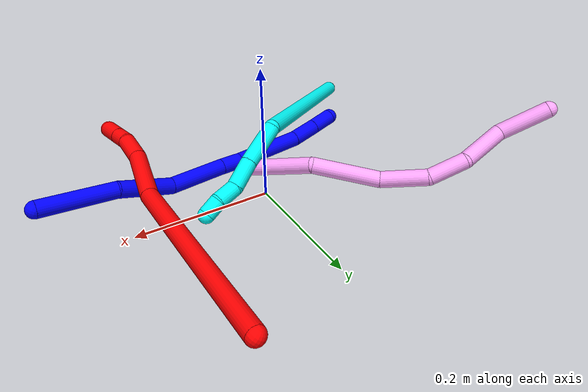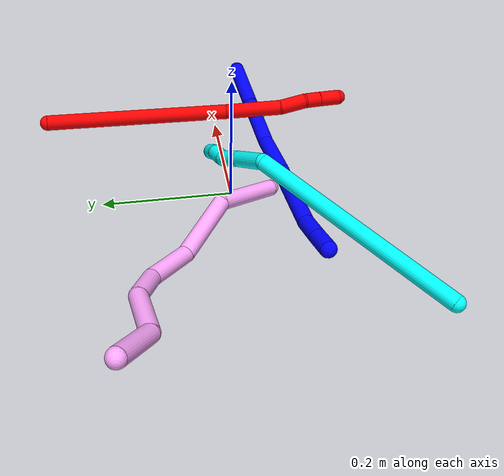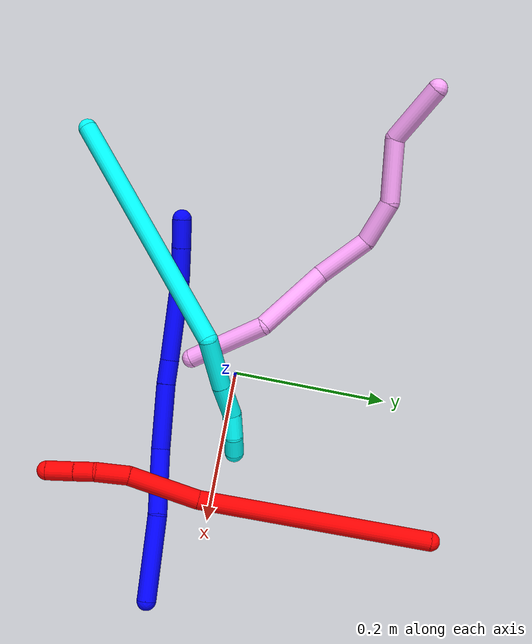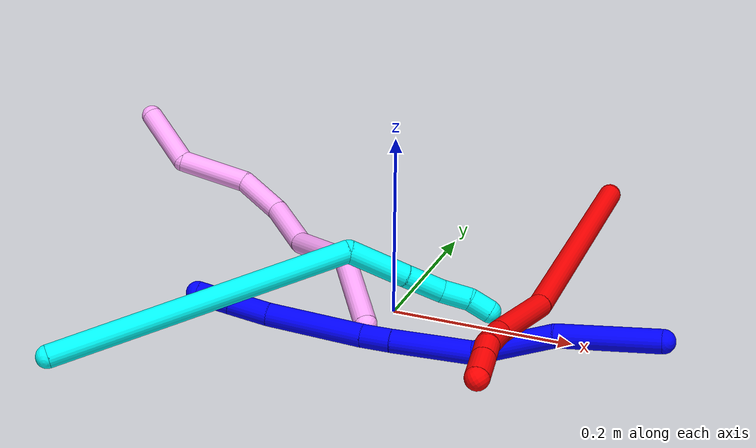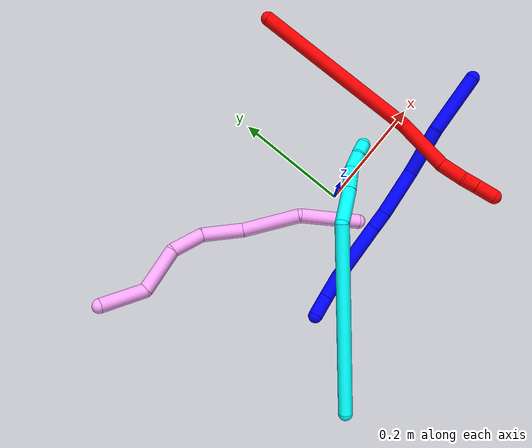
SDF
<sdf version="1.7">
 <world name="default">
  <plugin name="TubeGeneratorPlugin" filename="libtube_generator_plugin.so"/>
  <model name="photoneo_s_sensor">
   <static>1</static>
   <pose>0 0 2 1.57079 1.57079 3.14159</pose>
   <link name="link">
    <inertial><mass>0.1</mass></inertial>
    <sensor name="sensor" type="depth">
     <update_rate>30</update_rate>
     <camera>
      <horizontal_fov>1.22</horizontal_fov>
      <image><width>1920</width><height>1200</height><format>B8G8R8</format></image>
      <clip><near>0.1</near><far>4</far></clip>
      <depth_camera><output>points</output></depth_camera>
     </camera>
     <plugin name="camera_plugin" filename="libgazebo_ros_depth_camera.so">
      <baseline>0.2</baseline>
      <alwaysOn>1</alwaysOn>
      <updateRate>0.0</updateRate>
      <cameraName>camera_ir</cameraName>
      <imageTopicName>/camera/color/image_raw</imageTopicName>
      <cameraInfoTopicName>/camera/color/camera_info</cameraInfoTopicName>
      <depthImageTopicName>/camera/depth/image_raw</depthImageTopicName>
      <depthImageCameraInfoTopicName>/camera/depth/camera_info</depthImageCameraInfoTopicName>
      <pointCloudTopicName>/camera/depth/points</pointCloudTopicName>
      <frameName>fr_optical</frameName>
      <pointCloudCutoff>0.1</pointCloudCutoff>
      <pointCloudCutoffMax>2.0</pointCloudCutoffMax>
      <distortionK1>0</distortionK1>
      <distortionK2>0</distortionK2>
      <distortionK3>0</distortionK3>
      <distortionT1>0</distortionT1>
      <distortionT2>0</distortionT2>
      <CxPrime>0</CxPrime>
      <Cx>0</Cx>
      <Cy>0</Cy>
      <focalLength>0</focalLength>
      <hackBaseline>0</hackBaseline>
     </plugin>
    </sensor>
   </link>
  </model>
  <gravity>0 0 -9.8</gravity>
  <magnetic_field>6e-06 2.3e-05 -4.2e-05</magnetic_field>
  <atmosphere type="adiabatic"/>
  <physics name="default_physics" default="0" type="ode">
   <max_step_size>0.003</max_step_size>
   <real_time_factor>1</real_time_factor>
   <real_time_update_rate>1000</real_time_update_rate>
   <max_contacts>10000</max_contacts>
   <ode>
    <solver>
     <type>quick</type>
     <iters>100</iters>
     <sor>1.3</sor>
     <use_dynamic_moi_rescaling>0</use_dynamic_moi_rescaling>
    </solver>
    <constraints>
     <contact_max_correcting_vel>0</contact_max_correcting_vel>
     <contact_surface_layer>0.001</contact_surface_layer>
     <cfm>0</cfm>
     <erp>0.2</erp>
    </constraints>
   </ode>
  </physics>
  <scene><ambient>0.4 0.4 0.4 1</ambient><background>0.7 0.7 0.7 1</background><shadows>0</shadows></scene>
  <audio><device>default</device></audio>
  <spherical_coordinates>
   <surface_model>EARTH_WGS84</surface_model>
   <latitude_deg>0</latitude_deg>
   <longitude_deg>0</longitude_deg>
   <elevation>0</elevation>
   <heading_deg>0</heading_deg>
  </spherical_coordinates>
  <model name="bin">
   <static>1</static>
   <link name="bottom">
    <collision name="collision-bottom">
     <pose>0 0 -0.01 0 -0 0</pose>
     <geometry><box><size>0.8 0.6 0.02</size></box></geometry>
     <surface>
      <friction><ode><mu>100</mu><mu2>100</mu2></ode></friction>
      <contact><collide_bitmask>65535</collide_bitmask></contact>
     </surface>
    </collision>
   </link>
   <link name="west_wall">
    <collision name="collision-west_wall">
     <pose>-0.41 0 0.1 0 -0 0</pose>
     <geometry><box><size>0.02 0.6 0.2</size></box></geometry>
     <surface>
      <friction><ode><mu>100</mu><mu2>100</mu2></ode></friction>
      <contact><collide_bitmask>65535</collide_bitmask></contact>
     </surface>
    </collision>
   </link>
   <link name="east_wall">
    <collision name="collision-east_wall">
     <pose>0.41 0 0.1 0 -0 0</pose>
     <geometry><box><size>0.02 0.6 0.2</size></box></geometry>
     <surface>
      <friction><ode><mu>100</mu><mu2>100</mu2></ode></friction>
      <contact><collide_bitmask>65535</collide_bitmask></contact>
     </surface>
    </collision>
   </link>
   <link name="south_wall">
    <collision name="collision-south_wall">
     <pose>0 -0.31 0.1 0 -0 0</pose>
     <geometry><box><size>0.8 0.02 0.2</size></box></geometry>
     <surface>
      <friction><ode><mu>100</mu><mu2>100</mu2></ode></friction>
      <contact><collide_bitmask>65535</collide_bitmask></contact>
     </surface>
    </collision>
   </link>
   <link name="north_wall">
    <collision name="collision-north_wall">
     <pose>0 0.31 0.1 0 -0 0</pose>
     <geometry><box><size>0.8 0.02 0.2</size></box></geometry>
     <surface>
      <friction><ode><mu>100</mu><mu2>100</mu2></ode></friction>
      <contact><collide_bitmask>65535</collide_bitmask></contact>
     </surface>
    </collision>
   </link>
  </model>
  <model name="1">
   <static>0</static>
   <link name="1">
    <collision name="collision-cylinder-e_1_1_4">
     <pose>-0.033932 -0.015202 -0.03967 2.77563 -0.673962 -2.1697</pose>
     <geometry><cylinder><radius>0.0125</radius><length>0.108741</length></cylinder></geometry>
     <surface>
      <friction><ode><mu>1.16</mu><mu2>1.16</mu2><slip1>0</slip1><slip2>0</slip2></ode></friction>
      <contact><ode><kp>1e+06</kp><kd>1</kd><max_vel>0</max_vel><min_depth>0.001</min_depth></ode></contact>
     </surface>
    </collision>
    <visual name="visual-cylinder-e_1_1_4">
     <pose>-0.033932 -0.015202 -0.03967 2.77563 -0.673962 -2.1697</pose>
     <geometry><cylinder><radius>0.0125</radius><length>0.108741</length></cylinder></geometry>
     <material><ambient>0 0 1 1</ambient></material>
    </visual>
    <collision name="collision-cylinder-e_2_4_5">
     <pose>-0.088454 -0.051519 -0.111286 2.55757 -0.493344 -1.39455</pose>
     <geometry><cylinder><radius>0.0125</radius><length>0.086957</length></cylinder></geometry>
     <surface>
      <friction><ode><mu>1.16</mu><mu2>1.16</mu2><slip1>0</slip1><slip2>0</slip2></ode></friction>
      <contact><ode><kp>1e+06</kp><kd>1</kd><max_vel>0</max_vel><min_depth>0.001</min_depth></ode></contact>
     </surface>
    </collision>
    <visual name="visual-cylinder-e_2_4_5">
     <pose>-0.088454 -0.051519 -0.111286 2.55757 -0.493344 -1.39455</pose>
     <geometry><cylinder><radius>0.0125</radius><length>0.086957</length></cylinder></geometry>
     <material><ambient>0 0 1 1</ambient></material>
    </visual>
    <collision name="collision-cylinder-e_3_5_6">
     <pose>-0.1401 -0.082768 -0.171935 2.80219 -0.795416 -2.36703</pose>
     <geometry><cylinder><radius>0.0125</radius><length>0.08697</length></cylinder></geometry>
     <surface>
      <friction><ode><mu>1.16</mu><mu2>1.16</mu2><slip1>0</slip1><slip2>0</slip2></ode></friction>
      <contact><ode><kp>1e+06</kp><kd>1</kd><max_vel>0</max_vel><min_depth>0.001</min_depth></ode></contact>
     </surface>
    </collision>
    <visual name="visual-cylinder-e_3_5_6">
     <pose>-0.1401 -0.082768 -0.171935 2.80219 -0.795416 -2.36703</pose>
     <geometry><cylinder><radius>0.0125</radius><length>0.08697</length></cylinder></geometry>
     <material><ambient>0 0 1 1</ambient></material>
    </visual>
    <collision name="collision-cylinder-e_4_6_7">
     <pose>-0.182082 -0.095906 -0.211823 2.87922 -0.756311 -2.50028</pose>
     <geometry><cylinder><radius>0.0125</radius><length>0.031845</length></cylinder></geometry>
     <surface>
      <friction><ode><mu>1.16</mu><mu2>1.16</mu2><slip1>0</slip1><slip2>0</slip2></ode></friction>
      <contact><ode><kp>1e+06</kp><kd>1</kd><max_vel>0</max_vel><min_depth>0.001</min_depth></ode></contact>
     </surface>
    </collision>
    <visual name="visual-cylinder-e_4_6_7">
     <pose>-0.182082 -0.095906 -0.211823 2.87922 -0.756311 -2.50028</pose>
     <geometry><cylinder><radius>0.0125</radius><length>0.031845</length></cylinder></geometry>
     <material><ambient>0 0 1 1</ambient></material>
    </visual>
    <collision name="collision-cylinder-e_5_7_8">
     <pose>-0.231557 -0.107164 -0.258246 2.91148 -0.816923 -2.61973</pose>
     <geometry><cylinder><radius>0.0125</radius><length>0.105751</length></cylinder></geometry>
     <surface>
      <friction><ode><mu>1.16</mu><mu2>1.16</mu2><slip1>0</slip1><slip2>0</slip2></ode></friction>
      <contact><ode><kp>1e+06</kp><kd>1</kd><max_vel>0</max_vel><min_depth>0.001</min_depth></ode></contact>
     </surface>
    </collision>
    <visual name="visual-cylinder-e_5_7_8">
     <pose>-0.231557 -0.107164 -0.258246 2.91148 -0.816923 -2.61973</pose>
     <geometry><cylinder><radius>0.0125</radius><length>0.105751</length></cylinder></geometry>
     <material><ambient>0 0 1 1</ambient></material>
    </visual>
    <collision name="collision-cylinder-e_6_8_9">
     <pose>-0.287803 -0.118172 -0.305192 2.91065 -0.973863 -2.71027</pose>
     <geometry><cylinder><radius>0.0125</radius><length>0.042796</length></cylinder></geometry>
     <surface>
      <friction><ode><mu>1.16</mu><mu2>1.16</mu2><slip1>0</slip1><slip2>0</slip2></ode></friction>
      <contact><ode><kp>1e+06</kp><kd>1</kd><max_vel>0</max_vel><min_depth>0.001</min_depth></ode></contact>
     </surface>
    </collision>
    <visual name="visual-cylinder-e_6_8_9">
     <pose>-0.287803 -0.118172 -0.305192 2.91065 -0.973863 -2.71027</pose>
     <geometry><cylinder><radius>0.0125</radius><length>0.042796</length></cylinder></geometry>
     <material><ambient>0 0 1 1</ambient></material>
    </visual>
    <collision name="collision-cylinder-e_7_9_2">
     <pose>-0.320966 -0.123306 -0.326713 2.90355 -0.992412 -2.7068</pose>
     <geometry><cylinder><radius>0.0125</radius><length>0.03694</length></cylinder></geometry>
     <surface>
      <friction><ode><mu>1.16</mu><mu2>1.16</mu2><slip1>0</slip1><slip2>0</slip2></ode></friction>
      <contact><ode><kp>1e+06</kp><kd>1</kd><max_vel>0</max_vel><min_depth>0.001</min_depth></ode></contact>
     </surface>
    </collision>
    <visual name="visual-cylinder-e_7_9_2">
     <pose>-0.320966 -0.123306 -0.326713 2.90355 -0.992412 -2.7068</pose>
     <geometry><cylinder><radius>0.0125</radius><length>0.03694</length></cylinder></geometry>
     <material><ambient>0 0 1 1</ambient></material>
    </visual>
    <collision name="collision-sphere-2">
     <pose>-0.336431 -0.125687 -0.336525 0 -0 0</pose>
     <geometry><sphere><radius>0.0125</radius></sphere></geometry>
     <surface>
      <friction><ode><mu>1.16</mu><mu2>1.16</mu2><slip1>0</slip1><slip2>0</slip2></ode></friction>
      <contact><ode><kp>1e+06</kp><kd>1</kd><max_vel>0</max_vel><min_depth>0.001</min_depth></ode></contact>
     </surface>
    </collision>
    <visual name="visual-sphere-2">
     <pose>-0.336431 -0.125687 -0.336525 0 -0 0</pose>
     <geometry><sphere><radius>0.0125</radius></sphere></geometry>
     <material><ambient>0 0 1 1</ambient></material>
    </visual>
    <collision name="collision-sphere-9">
     <pose>-0.3055 -0.120925 -0.316901 0 -0 0</pose>
     <geometry><sphere><radius>0.0125</radius></sphere></geometry>
     <surface>
      <friction><ode><mu>1.16</mu><mu2>1.16</mu2><slip1>0</slip1><slip2>0</slip2></ode></friction>
      <contact><ode><kp>1e+06</kp><kd>1</kd><max_vel>0</max_vel><min_depth>0.001</min_depth></ode></contact>
     </surface>
    </collision>
    <visual name="visual-sphere-9">
     <pose>-0.3055 -0.120925 -0.316901 0 -0 0</pose>
     <geometry><sphere><radius>0.0125</radius></sphere></geometry>
     <material><ambient>0 0 1 1</ambient></material>
    </visual>
    <collision name="collision-sphere-4">
     <pose>-0.067864 -0.030405 -0.079339 0 -0 0</pose>
     <geometry><sphere><radius>0.0125</radius></sphere></geometry>
     <surface>
      <friction><ode><mu>1.16</mu><mu2>1.16</mu2><slip1>0</slip1><slip2>0</slip2></ode></friction>
      <contact><ode><kp>1e+06</kp><kd>1</kd><max_vel>0</max_vel><min_depth>0.001</min_depth></ode></contact>
     </surface>
    </collision>
    <visual name="visual-sphere-4">
     <pose>-0.067864 -0.030405 -0.079339 0 -0 0</pose>
     <geometry><sphere><radius>0.0125</radius></sphere></geometry>
     <material><ambient>0 0 1 1</ambient></material>
    </visual>
    <collision name="collision-sphere-1">
     <geometry><sphere><radius>0.0125</radius></sphere></geometry>
     <surface>
      <friction><ode><mu>1.16</mu><mu2>1.16</mu2><slip1>0</slip1><slip2>0</slip2></ode></friction>
      <contact><ode><kp>1e+06</kp><kd>1</kd><max_vel>0</max_vel><min_depth>0.001</min_depth></ode></contact>
     </surface>
    </collision>
    <visual name="visual-sphere-1">
     <geometry><sphere><radius>0.0125</radius></sphere></geometry>
     <material><ambient>0 0 1 1</ambient></material>
    </visual>
    <collision name="collision-sphere-8">
     <pose>-0.270105 -0.115419 -0.293484 0 -0 0</pose>
     <geometry><sphere><radius>0.0125</radius></sphere></geometry>
     <surface>
      <friction><ode><mu>1.16</mu><mu2>1.16</mu2><slip1>0</slip1><slip2>0</slip2></ode></friction>
      <contact><ode><kp>1e+06</kp><kd>1</kd><max_vel>0</max_vel><min_depth>0.001</min_depth></ode></contact>
     </surface>
    </collision>
    <visual name="visual-sphere-8">
     <pose>-0.270105 -0.115419 -0.293484 0 -0 0</pose>
     <geometry><sphere><radius>0.0125</radius></sphere></geometry>
     <material><ambient>0 0 1 1</ambient></material>
    </visual>
    <collision name="collision-sphere-5">
     <pose>-0.109045 -0.072634 -0.143232 0 -0 0</pose>
     <geometry><sphere><radius>0.0125</radius></sphere></geometry>
     <surface>
      <friction><ode><mu>1.16</mu><mu2>1.16</mu2><slip1>0</slip1><slip2>0</slip2></ode></friction>
      <contact><ode><kp>1e+06</kp><kd>1</kd><max_vel>0</max_vel><min_depth>0.001</min_depth></ode></contact>
     </surface>
    </collision>
    <visual name="visual-sphere-5">
     <pose>-0.109045 -0.072634 -0.143232 0 -0 0</pose>
     <geometry><sphere><radius>0.0125</radius></sphere></geometry>
     <material><ambient>0 0 1 1</ambient></material>
    </visual>
    <collision name="collision-sphere-6">
     <pose>-0.171155 -0.092902 -0.200638 0 -0 0</pose>
     <geometry><sphere><radius>0.0125</radius></sphere></geometry>
     <surface>
      <friction><ode><mu>1.16</mu><mu2>1.16</mu2><slip1>0</slip1><slip2>0</slip2></ode></friction>
      <contact><ode><kp>1e+06</kp><kd>1</kd><max_vel>0</max_vel><min_depth>0.001</min_depth></ode></contact>
     </surface>
    </collision>
    <visual name="visual-sphere-6">
     <pose>-0.171155 -0.092902 -0.200638 0 -0 0</pose>
     <geometry><sphere><radius>0.0125</radius></sphere></geometry>
     <material><ambient>0 0 1 1</ambient></material>
    </visual>
    <collision name="collision-sphere-7">
     <pose>-0.193008 -0.09891 -0.223008 0 -0 0</pose>
     <geometry><sphere><radius>0.0125</radius></sphere></geometry>
     <surface>
      <friction><ode><mu>1.16</mu><mu2>1.16</mu2><slip1>0</slip1><slip2>0</slip2></ode></friction>
      <contact><ode><kp>1e+06</kp><kd>1</kd><max_vel>0</max_vel><min_depth>0.001</min_depth></ode></contact>
     </surface>
    </collision>
    <visual name="visual-sphere-7">
     <pose>-0.193008 -0.09891 -0.223008 0 -0 0</pose>
     <geometry><sphere><radius>0.0125</radius></sphere></geometry>
     <material><ambient>0 0 1 1</ambient></material>
    </visual>
    <inertial>
     <pose>-0.15605 -0.074661 -0.176258 0 -0 0</pose>
     <mass>0.5</mass>
     <inertia>
      <ixx>-0.000357</ixx>
      <ixy>0</ixy>
      <ixz>0</ixz>
      <iyy>4.6e-05</iyy>
      <iyz>0</iyz>
      <izz>0.000293</izz>
     </inertia>
    </inertial>
   </link>
   <pose>0.306185 -0.056448 0.052177 0.989793 0.674718 0.546523</pose>
  </model>
  <model name="2">
   <static>0</static>
   <link name="2">
    <collision name="collision-cylinder-e_1_1_4">
     <pose>-0.029601 -0.145402 -0.024557 1.73811 -0.198105 -0.234064</pose>
     <geometry><cylinder><radius>0.0125</radius><length>0.300805</length></cylinder></geometry>
     <surface>
      <friction><ode><mu>1.16</mu><mu2>1.16</mu2><slip1>0</slip1><slip2>0</slip2></ode></friction>
      <contact><ode><kp>1e+06</kp><kd>1</kd><max_vel>0</max_vel><min_depth>0.001</min_depth></ode></contact>
     </surface>
    </collision>
    <visual name="visual-cylinder-e_1_1_4">
     <pose>-0.029601 -0.145402 -0.024557 1.73811 -0.198105 -0.234064</pose>
     <geometry><cylinder><radius>0.0125</radius><length>0.300805</length></cylinder></geometry>
     <material><ambient>1 0 0 1</ambient></material>
    </visual>
    <collision name="collision-cylinder-e_2_4_5">
     <pose>-0.071248 -0.33629 -0.04697 1.5237 -0.258612 -0.246834</pose>
     <geometry><cylinder><radius>0.0125</radius><length>0.094206</length></cylinder></geometry>
     <surface>
      <friction><ode><mu>1.16</mu><mu2>1.16</mu2><slip1>0</slip1><slip2>0</slip2></ode></friction>
      <contact><ode><kp>1e+06</kp><kd>1</kd><max_vel>0</max_vel><min_depth>0.001</min_depth></ode></contact>
     </surface>
    </collision>
    <visual name="visual-cylinder-e_2_4_5">
     <pose>-0.071248 -0.33629 -0.04697 1.5237 -0.258612 -0.246834</pose>
     <geometry><cylinder><radius>0.0125</radius><length>0.094206</length></cylinder></geometry>
     <material><ambient>1 0 0 1</ambient></material>
    </visual>
    <collision name="collision-cylinder-e_3_5_6">
     <pose>-0.084225 -0.403378 -0.045354 1.59523 -0.043035 -0.044099</pose>
     <geometry><cylinder><radius>0.0125</radius><length>0.043258</length></cylinder></geometry>
     <surface>
      <friction><ode><mu>1.16</mu><mu2>1.16</mu2><slip1>0</slip1><slip2>0</slip2></ode></friction>
      <contact><ode><kp>1e+06</kp><kd>1</kd><max_vel>0</max_vel><min_depth>0.001</min_depth></ode></contact>
     </surface>
    </collision>
    <visual name="visual-cylinder-e_3_5_6">
     <pose>-0.084225 -0.403378 -0.045354 1.59523 -0.043035 -0.044099</pose>
     <geometry><cylinder><radius>0.0125</radius><length>0.043258</length></cylinder></geometry>
     <material><ambient>1 0 0 1</ambient></material>
    </visual>
    <collision name="collision-cylinder-e_4_6_7">
     <pose>-0.086323 -0.437322 -0.049507 1.85644 -0.090561 -0.120916</pose>
     <geometry><cylinder><radius>0.0125</radius><length>0.025831</length></cylinder></geometry>
     <surface>
      <friction><ode><mu>1.16</mu><mu2>1.16</mu2><slip1>0</slip1><slip2>0</slip2></ode></friction>
      <contact><ode><kp>1e+06</kp><kd>1</kd><max_vel>0</max_vel><min_depth>0.001</min_depth></ode></contact>
     </surface>
    </collision>
    <visual name="visual-cylinder-e_4_6_7">
     <pose>-0.086323 -0.437322 -0.049507 1.85644 -0.090561 -0.120916</pose>
     <geometry><cylinder><radius>0.0125</radius><length>0.025831</length></cylinder></geometry>
     <material><ambient>1 0 0 1</ambient></material>
    </visual>
    <collision name="collision-cylinder-e_5_7_2">
     <pose>-0.089386 -0.466785 -0.05818 1.85756 -0.105729 -0.141306</pose>
     <geometry><cylinder><radius>0.0125</radius><length>0.035899</length></cylinder></geometry>
     <surface>
      <friction><ode><mu>1.16</mu><mu2>1.16</mu2><slip1>0</slip1><slip2>0</slip2></ode></friction>
      <contact><ode><kp>1e+06</kp><kd>1</kd><max_vel>0</max_vel><min_depth>0.001</min_depth></ode></contact>
     </surface>
    </collision>
    <visual name="visual-cylinder-e_5_7_2">
     <pose>-0.089386 -0.466785 -0.05818 1.85756 -0.105729 -0.141306</pose>
     <geometry><cylinder><radius>0.0125</radius><length>0.035899</length></cylinder></geometry>
     <material><ambient>1 0 0 1</ambient></material>
    </visual>
    <collision name="collision-sphere-2">
     <pose>-0.09128 -0.483905 -0.063229 0 -0 0</pose>
     <geometry><sphere><radius>0.0125</radius></sphere></geometry>
     <surface>
      <friction><ode><mu>1.16</mu><mu2>1.16</mu2><slip1>0</slip1><slip2>0</slip2></ode></friction>
      <contact><ode><kp>1e+06</kp><kd>1</kd><max_vel>0</max_vel><min_depth>0.001</min_depth></ode></contact>
     </surface>
    </collision>
    <visual name="visual-sphere-2">
     <pose>-0.09128 -0.483905 -0.063229 0 -0 0</pose>
     <geometry><sphere><radius>0.0125</radius></sphere></geometry>
     <material><ambient>1 0 0 1</ambient></material>
    </visual>
    <collision name="collision-sphere-7">
     <pose>-0.087491 -0.449664 -0.053131 0 -0 0</pose>
     <geometry><sphere><radius>0.0125</radius></sphere></geometry>
     <surface>
      <friction><ode><mu>1.16</mu><mu2>1.16</mu2><slip1>0</slip1><slip2>0</slip2></ode></friction>
      <contact><ode><kp>1e+06</kp><kd>1</kd><max_vel>0</max_vel><min_depth>0.001</min_depth></ode></contact>
     </surface>
    </collision>
    <visual name="visual-sphere-7">
     <pose>-0.087491 -0.449664 -0.053131 0 -0 0</pose>
     <geometry><sphere><radius>0.0125</radius></sphere></geometry>
     <material><ambient>1 0 0 1</ambient></material>
    </visual>
    <collision name="collision-sphere-6">
     <pose>-0.085155 -0.424981 -0.045882 0 -0 0</pose>
     <geometry><sphere><radius>0.0125</radius></sphere></geometry>
     <surface>
      <friction><ode><mu>1.16</mu><mu2>1.16</mu2><slip1>0</slip1><slip2>0</slip2></ode></friction>
      <contact><ode><kp>1e+06</kp><kd>1</kd><max_vel>0</max_vel><min_depth>0.001</min_depth></ode></contact>
     </surface>
    </collision>
    <visual name="visual-sphere-6">
     <pose>-0.085155 -0.424981 -0.045882 0 -0 0</pose>
     <geometry><sphere><radius>0.0125</radius></sphere></geometry>
     <material><ambient>1 0 0 1</ambient></material>
    </visual>
    <collision name="collision-sphere-5">
     <pose>-0.083294 -0.381776 -0.044826 0 -0 0</pose>
     <geometry><sphere><radius>0.0125</radius></sphere></geometry>
     <surface>
      <friction><ode><mu>1.16</mu><mu2>1.16</mu2><slip1>0</slip1><slip2>0</slip2></ode></friction>
      <contact><ode><kp>1e+06</kp><kd>1</kd><max_vel>0</max_vel><min_depth>0.001</min_depth></ode></contact>
     </surface>
    </collision>
    <visual name="visual-sphere-5">
     <pose>-0.083294 -0.381776 -0.044826 0 -0 0</pose>
     <geometry><sphere><radius>0.0125</radius></sphere></geometry>
     <material><ambient>1 0 0 1</ambient></material>
    </visual>
    <collision name="collision-sphere-1">
     <geometry><sphere><radius>0.0125</radius></sphere></geometry>
     <surface>
      <friction><ode><mu>1.16</mu><mu2>1.16</mu2><slip1>0</slip1><slip2>0</slip2></ode></friction>
      <contact><ode><kp>1e+06</kp><kd>1</kd><max_vel>0</max_vel><min_depth>0.001</min_depth></ode></contact>
     </surface>
    </collision>
    <visual name="visual-sphere-1">
     <geometry><sphere><radius>0.0125</radius></sphere></geometry>
     <material><ambient>1 0 0 1</ambient></material>
    </visual>
    <collision name="collision-sphere-4">
     <pose>-0.059202 -0.290803 -0.049114 0 -0 0</pose>
     <geometry><sphere><radius>0.0125</radius></sphere></geometry>
     <surface>
      <friction><ode><mu>1.16</mu><mu2>1.16</mu2><slip1>0</slip1><slip2>0</slip2></ode></friction>
      <contact><ode><kp>1e+06</kp><kd>1</kd><max_vel>0</max_vel><min_depth>0.001</min_depth></ode></contact>
     </surface>
    </collision>
    <visual name="visual-sphere-4">
     <pose>-0.059202 -0.290803 -0.049114 0 -0 0</pose>
     <geometry><sphere><radius>0.0125</radius></sphere></geometry>
     <material><ambient>1 0 0 1</ambient></material>
    </visual>
    <inertial>
     <pose>-0.049397 -0.241843 -0.034282 0 -0 0</pose>
     <mass>0.5</mass>
     <inertia>
      <ixx>0.001715</ixx>
      <ixy>0</ixy>
      <ixz>0</ixz>
      <iyy>-0.000836</iyy>
      <iyz>0</iyz>
      <izz>0.002754</izz>
     </inertia>
    </inertial>
   </link>
   <pose>0.162748 0.284536 0.054027 -0.284409 -0.632407 0.245076</pose>
  </model>
  <model name="3">
   <static>0</static>
   <link name="3">
    <collision name="collision-cylinder-e_1_1_4">
     <pose>0.0869 0.118317 -0.076014 -2.14185 0.553499 -0.959179</pose>
     <geometry><cylinder><radius>0.0125</radius><length>0.330627</length></cylinder></geometry>
     <surface>
      <friction><ode><mu>1.16</mu><mu2>1.16</mu2><slip1>0</slip1><slip2>0</slip2></ode></friction>
      <contact><ode><kp>1e+06</kp><kd>1</kd><max_vel>0</max_vel><min_depth>0.001</min_depth></ode></contact>
     </surface>
    </collision>
    <visual name="visual-cylinder-e_1_1_4">
     <pose>0.0869 0.118317 -0.076014 -2.14185 0.553499 -0.959179</pose>
     <geometry><cylinder><radius>0.0125</radius><length>0.330627</length></cylinder></geometry>
     <material><ambient>0.003922 1 0.996078 1</ambient></material>
    </visual>
    <collision name="collision-cylinder-e_2_4_5">
     <pose>0.206338 0.244941 -0.156881 -2.0995 1.28331 -1.83147</pose>
     <geometry><cylinder><radius>0.0125</radius><length>0.067862</length></cylinder></geometry>
     <surface>
      <friction><ode><mu>1.16</mu><mu2>1.16</mu2><slip1>0</slip1><slip2>0</slip2></ode></friction>
      <contact><ode><kp>1e+06</kp><kd>1</kd><max_vel>0</max_vel><min_depth>0.001</min_depth></ode></contact>
     </surface>
    </collision>
    <visual name="visual-cylinder-e_2_4_5">
     <pose>0.206338 0.244941 -0.156881 -2.0995 1.28331 -1.83147</pose>
     <geometry><cylinder><radius>0.0125</radius><length>0.067862</length></cylinder></geometry>
     <material><ambient>0.003922 1 0.996078 1</ambient></material>
    </visual>
    <collision name="collision-cylinder-e_3_5_6">
     <pose>0.260211 0.258011 -0.166421 -2.34825 1.26723 -2.10523</pose>
     <geometry><cylinder><radius>0.0125</radius><length>0.044712</length></cylinder></geometry>
     <surface>
      <friction><ode><mu>1.16</mu><mu2>1.16</mu2><slip1>0</slip1><slip2>0</slip2></ode></friction>
      <contact><ode><kp>1e+06</kp><kd>1</kd><max_vel>0</max_vel><min_depth>0.001</min_depth></ode></contact>
     </surface>
    </collision>
    <visual name="visual-cylinder-e_3_5_6">
     <pose>0.260211 0.258011 -0.166421 -2.34825 1.26723 -2.10523</pose>
     <geometry><cylinder><radius>0.0125</radius><length>0.044712</length></cylinder></geometry>
     <material><ambient>0.003922 1 0.996078 1</ambient></material>
    </visual>
    <collision name="collision-cylinder-e_4_6_7">
     <pose>0.295568 0.270234 -0.170966 -1.55167 1.08183 -1.06503</pose>
     <geometry><cylinder><radius>0.0125</radius><length>0.031769</length></cylinder></geometry>
     <surface>
      <friction><ode><mu>1.16</mu><mu2>1.16</mu2><slip1>0</slip1><slip2>0</slip2></ode></friction>
      <contact><ode><kp>1e+06</kp><kd>1</kd><max_vel>0</max_vel><min_depth>0.001</min_depth></ode></contact>
     </surface>
    </collision>
    <visual name="visual-cylinder-e_4_6_7">
     <pose>0.295568 0.270234 -0.170966 -1.55167 1.08183 -1.06503</pose>
     <geometry><cylinder><radius>0.0125</radius><length>0.031769</length></cylinder></geometry>
     <material><ambient>0.003922 1 0.996078 1</ambient></material>
    </visual>
    <collision name="collision-cylinder-e_5_7_2">
     <pose>0.321788 0.280366 -0.169973 -1.26252 1.34479 -1.0542</pose>
     <geometry><cylinder><radius>0.0125</radius><length>0.025029</length></cylinder></geometry>
     <surface>
      <friction><ode><mu>1.16</mu><mu2>1.16</mu2><slip1>0</slip1><slip2>0</slip2></ode></friction>
      <contact><ode><kp>1e+06</kp><kd>1</kd><max_vel>0</max_vel><min_depth>0.001</min_depth></ode></contact>
     </surface>
    </collision>
    <visual name="visual-cylinder-e_5_7_2">
     <pose>0.321788 0.280366 -0.169973 -1.26252 1.34479 -1.0542</pose>
     <geometry><cylinder><radius>0.0125</radius><length>0.025029</length></cylinder></geometry>
     <material><ambient>0.003922 1 0.996078 1</ambient></material>
    </visual>
    <collision name="collision-sphere-2">
     <pose>0.333984 0.283038 -0.169122 0 -0 0</pose>
     <geometry><sphere><radius>0.0125</radius></sphere></geometry>
     <surface>
      <friction><ode><mu>1.16</mu><mu2>1.16</mu2><slip1>0</slip1><slip2>0</slip2></ode></friction>
      <contact><ode><kp>1e+06</kp><kd>1</kd><max_vel>0</max_vel><min_depth>0.001</min_depth></ode></contact>
     </surface>
    </collision>
    <visual name="visual-sphere-2">
     <pose>0.333984 0.283038 -0.169122 0 -0 0</pose>
     <geometry><sphere><radius>0.0125</radius></sphere></geometry>
     <material><ambient>0.003922 1 0.996078 1</ambient></material>
    </visual>
    <collision name="collision-sphere-7">
     <pose>0.309591 0.277694 -0.170824 0 -0 0</pose>
     <geometry><sphere><radius>0.0125</radius></sphere></geometry>
     <surface>
      <friction><ode><mu>1.16</mu><mu2>1.16</mu2><slip1>0</slip1><slip2>0</slip2></ode></friction>
      <contact><ode><kp>1e+06</kp><kd>1</kd><max_vel>0</max_vel><min_depth>0.001</min_depth></ode></contact>
     </surface>
    </collision>
    <visual name="visual-sphere-7">
     <pose>0.309591 0.277694 -0.170824 0 -0 0</pose>
     <geometry><sphere><radius>0.0125</radius></sphere></geometry>
     <material><ambient>0.003922 1 0.996078 1</ambient></material>
    </visual>
    <collision name="collision-sphere-6">
     <pose>0.281545 0.262774 -0.171109 0 -0 0</pose>
     <geometry><sphere><radius>0.0125</radius></sphere></geometry>
     <surface>
      <friction><ode><mu>1.16</mu><mu2>1.16</mu2><slip1>0</slip1><slip2>0</slip2></ode></friction>
      <contact><ode><kp>1e+06</kp><kd>1</kd><max_vel>0</max_vel><min_depth>0.001</min_depth></ode></contact>
     </surface>
    </collision>
    <visual name="visual-sphere-6">
     <pose>0.281545 0.262774 -0.171109 0 -0 0</pose>
     <geometry><sphere><radius>0.0125</radius></sphere></geometry>
     <material><ambient>0.003922 1 0.996078 1</ambient></material>
    </visual>
    <collision name="collision-sphere-5">
     <pose>0.238877 0.253248 -0.161734 0 -0 0</pose>
     <geometry><sphere><radius>0.0125</radius></sphere></geometry>
     <surface>
      <friction><ode><mu>1.16</mu><mu2>1.16</mu2><slip1>0</slip1><slip2>0</slip2></ode></friction>
      <contact><ode><kp>1e+06</kp><kd>1</kd><max_vel>0</max_vel><min_depth>0.001</min_depth></ode></contact>
     </surface>
    </collision>
    <visual name="visual-sphere-5">
     <pose>0.238877 0.253248 -0.161734 0 -0 0</pose>
     <geometry><sphere><radius>0.0125</radius></sphere></geometry>
     <material><ambient>0.003922 1 0.996078 1</ambient></material>
    </visual>
    <collision name="collision-sphere-1">
     <geometry><sphere><radius>0.0125</radius></sphere></geometry>
     <surface>
      <friction><ode><mu>1.16</mu><mu2>1.16</mu2><slip1>0</slip1><slip2>0</slip2></ode></friction>
      <contact><ode><kp>1e+06</kp><kd>1</kd><max_vel>0</max_vel><min_depth>0.001</min_depth></ode></contact>
     </surface>
    </collision>
    <visual name="visual-sphere-1">
     <geometry><sphere><radius>0.0125</radius></sphere></geometry>
     <material><ambient>0.003922 1 0.996078 1</ambient></material>
    </visual>
    <collision name="collision-sphere-4">
     <pose>0.1738 0.236634 -0.152028 0 -0 0</pose>
     <geometry><sphere><radius>0.0125</radius></sphere></geometry>
     <surface>
      <friction><ode><mu>1.16</mu><mu2>1.16</mu2><slip1>0</slip1><slip2>0</slip2></ode></friction>
      <contact><ode><kp>1e+06</kp><kd>1</kd><max_vel>0</max_vel><min_depth>0.001</min_depth></ode></contact>
     </surface>
    </collision>
    <visual name="visual-sphere-4">
     <pose>0.1738 0.236634 -0.152028 0 -0 0</pose>
     <geometry><sphere><radius>0.0125</radius></sphere></geometry>
     <material><ambient>0.003922 1 0.996078 1</ambient></material>
    </visual>
    <inertial>
     <pose>0.143625 0.165759 -0.105811 0 -0 0</pose>
     <mass>0.5</mass>
     <inertia>
      <ixx>-0.000618</ixx>
      <ixy>0</ixy>
      <ixz>0</ixz>
      <iyy>-0.0019</iyy>
      <iyz>0</iyz>
      <izz>-0.003821</izz>
     </inertia>
    </inertial>
   </link>
   <pose>-0.280353 -0.252256 0.011498 1.70607 0.737227 0.335397</pose>
  </model>
  <model name="4">
   <static>0</static>
   <link name="4">
    <collision name="collision-cylinder-e_1_1_4">
     <pose>-0.016726 0.039977 0.030967 -0.911719 -0.31944 0.15764</pose>
     <geometry><cylinder><radius>0.0125</radius><length>0.106525</length></cylinder></geometry>
     <surface>
      <friction><ode><mu>1.16</mu><mu2>1.16</mu2><slip1>0</slip1><slip2>0</slip2></ode></friction>
      <contact><ode><kp>1e+06</kp><kd>1</kd><max_vel>0</max_vel><min_depth>0.001</min_depth></ode></contact>
     </surface>
    </collision>
    <visual name="visual-cylinder-e_1_1_4">
     <pose>-0.016726 0.039977 0.030967 -0.911719 -0.31944 0.15764</pose>
     <geometry><cylinder><radius>0.0125</radius><length>0.106525</length></cylinder></geometry>
     <material><ambient>1 0.65098 0.996078 1</ambient></material>
    </visual>
    <collision name="collision-cylinder-e_2_4_5">
     <pose>-0.062667 0.095376 0.101664 -0.370265 -0.600922 0.115922</pose>
     <geometry><cylinder><radius>0.0125</radius><length>0.10334</length></cylinder></geometry>
     <surface>
      <friction><ode><mu>1.16</mu><mu2>1.16</mu2><slip1>0</slip1><slip2>0</slip2></ode></friction>
      <contact><ode><kp>1e+06</kp><kd>1</kd><max_vel>0</max_vel><min_depth>0.001</min_depth></ode></contact>
     </surface>
    </collision>
    <visual name="visual-cylinder-e_2_4_5">
     <pose>-0.062667 0.095376 0.101664 -0.370265 -0.600922 0.115922</pose>
     <geometry><cylinder><radius>0.0125</radius><length>0.10334</length></cylinder></geometry>
     <material><ambient>1 0.65098 0.996078 1</ambient></material>
    </visual>
    <collision name="collision-cylinder-e_3_5_6">
     <pose>-0.10367 0.132367 0.168213 -0.677329 -0.330011 0.117174</pose>
     <geometry><cylinder><radius>0.0125</radius><length>0.072758</length></cylinder></geometry>
     <surface>
      <friction><ode><mu>1.16</mu><mu2>1.16</mu2><slip1>0</slip1><slip2>0</slip2></ode></friction>
      <contact><ode><kp>1e+06</kp><kd>1</kd><max_vel>0</max_vel><min_depth>0.001</min_depth></ode></contact>
     </surface>
    </collision>
    <visual name="visual-cylinder-e_3_5_6">
     <pose>-0.10367 0.132367 0.168213 -0.677329 -0.330011 0.117174</pose>
     <geometry><cylinder><radius>0.0125</radius><length>0.072758</length></cylinder></geometry>
     <material><ambient>1 0.65098 0.996078 1</ambient></material>
    </visual>
    <collision name="collision-cylinder-e_4_6_7">
     <pose>-0.114188 0.166162 0.221559 -0.431877 0.043484 -0.00954</pose>
     <geometry><cylinder><radius>0.0125</radius><length>0.058474</length></cylinder></geometry>
     <surface>
      <friction><ode><mu>1.16</mu><mu2>1.16</mu2><slip1>0</slip1><slip2>0</slip2></ode></friction>
      <contact><ode><kp>1e+06</kp><kd>1</kd><max_vel>0</max_vel><min_depth>0.001</min_depth></ode></contact>
     </surface>
    </collision>
    <visual name="visual-cylinder-e_4_6_7">
     <pose>-0.114188 0.166162 0.221559 -0.431877 0.043484 -0.00954</pose>
     <geometry><cylinder><radius>0.0125</radius><length>0.058474</length></cylinder></geometry>
     <material><ambient>1 0.65098 0.996078 1</ambient></material>
    </visual>
    <collision name="collision-cylinder-e_5_7_8">
     <pose>-0.104375 0.177331 0.28717 0.027046 0.215101 0.00292</pose>
     <geometry><cylinder><radius>0.0125</radius><length>0.080041</length></cylinder></geometry>
     <surface>
      <friction><ode><mu>1.16</mu><mu2>1.16</mu2><slip1>0</slip1><slip2>0</slip2></ode></friction>
      <contact><ode><kp>1e+06</kp><kd>1</kd><max_vel>0</max_vel><min_depth>0.001</min_depth></ode></contact>
     </surface>
    </collision>
    <visual name="visual-cylinder-e_5_7_8">
     <pose>-0.104375 0.177331 0.28717 0.027046 0.215101 0.00292</pose>
     <geometry><cylinder><radius>0.0125</radius><length>0.080041</length></cylinder></geometry>
     <material><ambient>1 0.65098 0.996078 1</ambient></material>
    </visual>
    <collision name="collision-cylinder-e_6_8_2">
     <pose>-0.093671 0.199794 0.357829 -0.640225 0.054841 -0.018185</pose>
     <geometry><cylinder><radius>0.0125</radius><length>0.078862</length></cylinder></geometry>
     <surface>
      <friction><ode><mu>1.16</mu><mu2>1.16</mu2><slip1>0</slip1><slip2>0</slip2></ode></friction>
      <contact><ode><kp>1e+06</kp><kd>1</kd><max_vel>0</max_vel><min_depth>0.001</min_depth></ode></contact>
     </surface>
    </collision>
    <visual name="visual-cylinder-e_6_8_2">
     <pose>-0.093671 0.199794 0.357829 -0.640225 0.054841 -0.018185</pose>
     <geometry><cylinder><radius>0.0125</radius><length>0.078862</length></cylinder></geometry>
     <material><ambient>1 0.65098 0.996078 1</ambient></material>
    </visual>
    <collision name="collision-sphere-2">
     <pose>-0.09151 0.223313 0.389403 0 -0 0</pose>
     <geometry><sphere><radius>0.0125</radius></sphere></geometry>
     <surface>
      <friction><ode><mu>1.16</mu><mu2>1.16</mu2><slip1>0</slip1><slip2>0</slip2></ode></friction>
      <contact><ode><kp>1e+06</kp><kd>1</kd><max_vel>0</max_vel><min_depth>0.001</min_depth></ode></contact>
     </surface>
    </collision>
    <visual name="visual-sphere-2">
     <pose>-0.09151 0.223313 0.389403 0 -0 0</pose>
     <geometry><sphere><radius>0.0125</radius></sphere></geometry>
     <material><ambient>1 0.65098 0.996078 1</ambient></material>
    </visual>
    <collision name="collision-sphere-4">
     <pose>-0.033452 0.079954 0.061934 0 -0 0</pose>
     <geometry><sphere><radius>0.0125</radius></sphere></geometry>
     <surface>
      <friction><ode><mu>1.16</mu><mu2>1.16</mu2><slip1>0</slip1><slip2>0</slip2></ode></friction>
      <contact><ode><kp>1e+06</kp><kd>1</kd><max_vel>0</max_vel><min_depth>0.001</min_depth></ode></contact>
     </surface>
    </collision>
    <visual name="visual-sphere-4">
     <pose>-0.033452 0.079954 0.061934 0 -0 0</pose>
     <geometry><sphere><radius>0.0125</radius></sphere></geometry>
     <material><ambient>1 0.65098 0.996078 1</ambient></material>
    </visual>
    <collision name="collision-sphere-1">
     <geometry><sphere><radius>0.0125</radius></sphere></geometry>
     <surface>
      <friction><ode><mu>1.16</mu><mu2>1.16</mu2><slip1>0</slip1><slip2>0</slip2></ode></friction>
      <contact><ode><kp>1e+06</kp><kd>1</kd><max_vel>0</max_vel><min_depth>0.001</min_depth></ode></contact>
     </surface>
    </collision>
    <visual name="visual-sphere-1">
     <geometry><sphere><radius>0.0125</radius></sphere></geometry>
     <material><ambient>1 0.65098 0.996078 1</ambient></material>
    </visual>
    <collision name="collision-sphere-8">
     <pose>-0.095832 0.176274 0.326254 0 -0 0</pose>
     <geometry><sphere><radius>0.0125</radius></sphere></geometry>
     <surface>
      <friction><ode><mu>1.16</mu><mu2>1.16</mu2><slip1>0</slip1><slip2>0</slip2></ode></friction>
      <contact><ode><kp>1e+06</kp><kd>1</kd><max_vel>0</max_vel><min_depth>0.001</min_depth></ode></contact>
     </surface>
    </collision>
    <visual name="visual-sphere-8">
     <pose>-0.095832 0.176274 0.326254 0 -0 0</pose>
     <geometry><sphere><radius>0.0125</radius></sphere></geometry>
     <material><ambient>1 0.65098 0.996078 1</ambient></material>
    </visual>
    <collision name="collision-sphere-5">
     <pose>-0.091881 0.110798 0.141394 0 -0 0</pose>
     <geometry><sphere><radius>0.0125</radius></sphere></geometry>
     <surface>
      <friction><ode><mu>1.16</mu><mu2>1.16</mu2><slip1>0</slip1><slip2>0</slip2></ode></friction>
      <contact><ode><kp>1e+06</kp><kd>1</kd><max_vel>0</max_vel><min_depth>0.001</min_depth></ode></contact>
     </surface>
    </collision>
    <visual name="visual-sphere-5">
     <pose>-0.091881 0.110798 0.141394 0 -0 0</pose>
     <geometry><sphere><radius>0.0125</radius></sphere></geometry>
     <material><ambient>1 0.65098 0.996078 1</ambient></material>
    </visual>
    <collision name="collision-sphere-6">
     <pose>-0.115459 0.153936 0.195032 0 -0 0</pose>
     <geometry><sphere><radius>0.0125</radius></sphere></geometry>
     <surface>
      <friction><ode><mu>1.16</mu><mu2>1.16</mu2><slip1>0</slip1><slip2>0</slip2></ode></friction>
      <contact><ode><kp>1e+06</kp><kd>1</kd><max_vel>0</max_vel><min_depth>0.001</min_depth></ode></contact>
     </surface>
    </collision>
    <visual name="visual-sphere-6">
     <pose>-0.115459 0.153936 0.195032 0 -0 0</pose>
     <geometry><sphere><radius>0.0125</radius></sphere></geometry>
     <material><ambient>1 0.65098 0.996078 1</ambient></material>
    </visual>
    <collision name="collision-sphere-7">
     <pose>-0.112917 0.178389 0.248087 0 -0 0</pose>
     <geometry><sphere><radius>0.0125</radius></sphere></geometry>
     <surface>
      <friction><ode><mu>1.16</mu><mu2>1.16</mu2><slip1>0</slip1><slip2>0</slip2></ode></friction>
      <contact><ode><kp>1e+06</kp><kd>1</kd><max_vel>0</max_vel><min_depth>0.001</min_depth></ode></contact>
     </surface>
    </collision>
    <visual name="visual-sphere-7">
     <pose>-0.112917 0.178389 0.248087 0 -0 0</pose>
     <geometry><sphere><radius>0.0125</radius></sphere></geometry>
     <material><ambient>1 0.65098 0.996078 1</ambient></material>
    </visual>
    <inertial>
     <pose>-0.076438 0.126823 0.180407 0 -0 0</pose>
     <mass>0.5</mass>
     <inertia>
      <ixx>0.000338</ixx>
      <ixy>0</ixy>
      <ixz>0</ixz>
      <iyy>0.00033</iyy>
      <iyz>0</iyz>
      <izz>-4.5e-05</izz>
     </inertia>
    </inertial>
   </link>
   <pose>-0.008698 -0.060498 0.011802 1.42451 -0.89969 -1.46622</pose>
  </model>
 </world>
</sdf>
